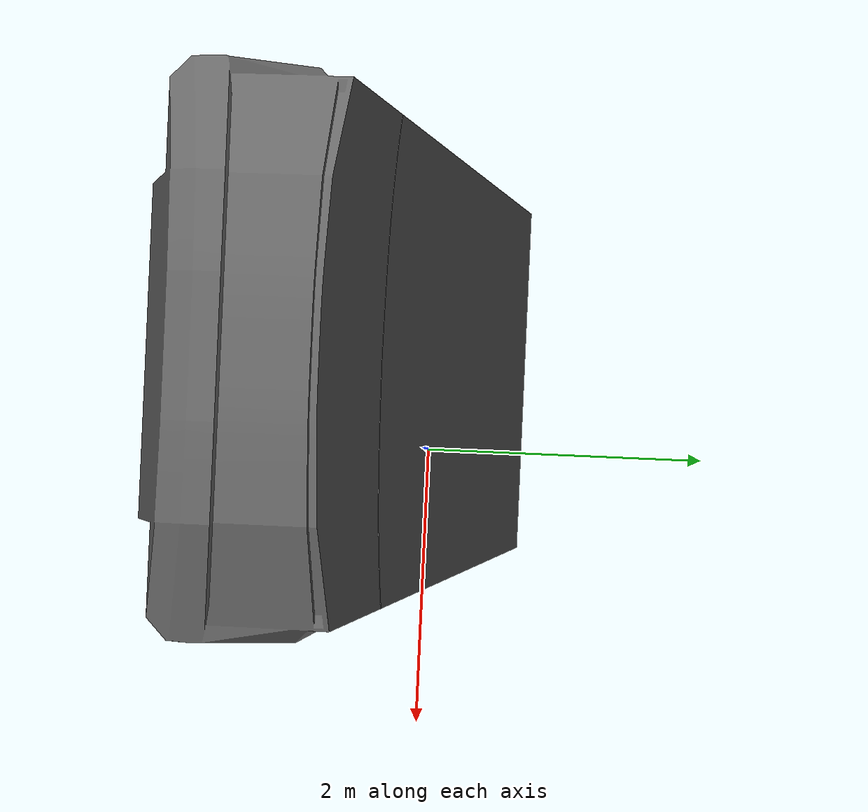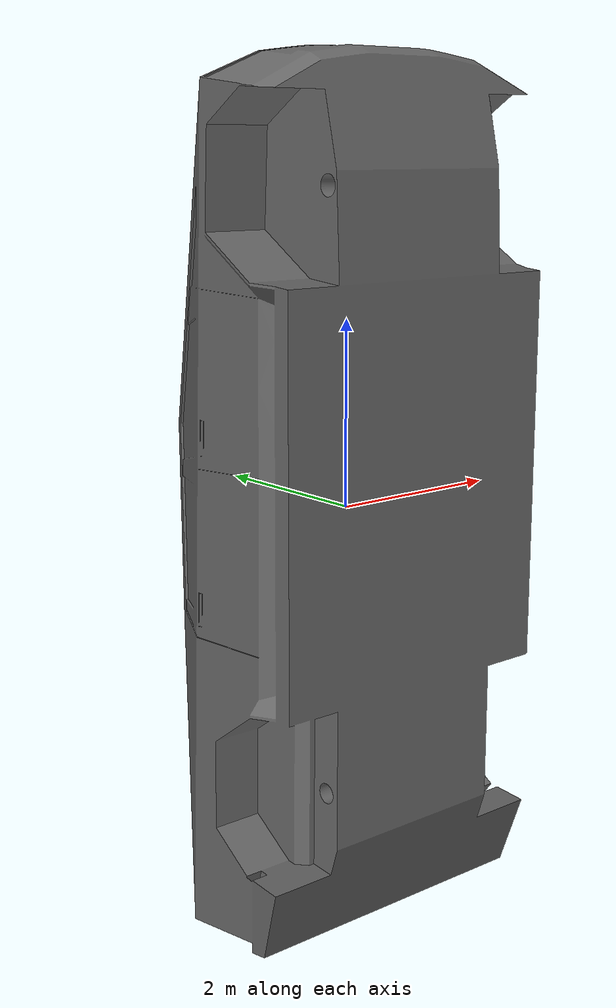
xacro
<?xml version="1.0"?>
<robot name="gps_marker_cybertruck">
<!-- xmlns:xacro="http://www.ros.org/wiki/xacro" -->
  <!-- Define the base link with your STL model -->
  <link name="marker_base_link">
    <visual>
    <!-- Rotate 90 degrees around X-axis -->
      <origin xyz="-0.50 -0.50 0.3" rpy="0 0 0" />
        <geometry>
          <mesh filename="package://rds_description/meshes/full_truck.stl" scale="0.05 0.05 0.05"/>
        </geometry>
        <material name="white">
          <color rgba="0.4 0.4 0.4 0.9"/>
        </material>
    </visual>
  </link>
</robot>
